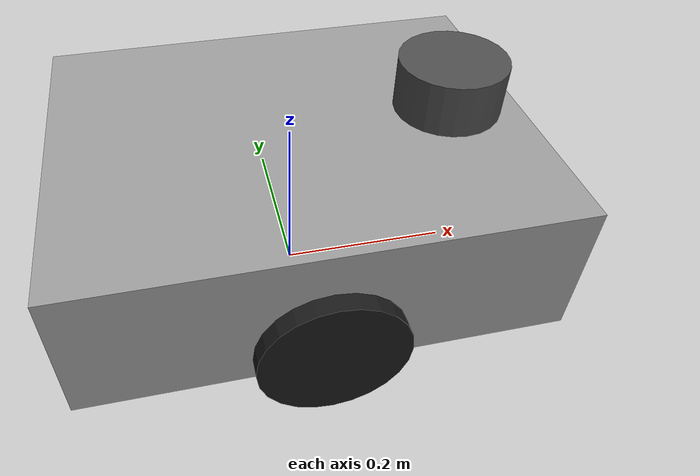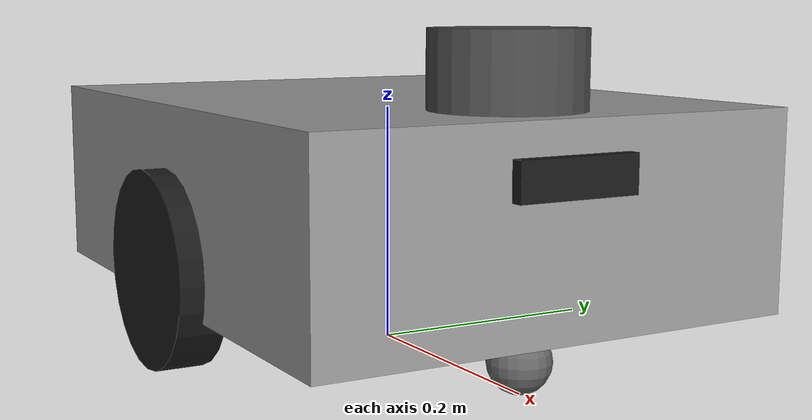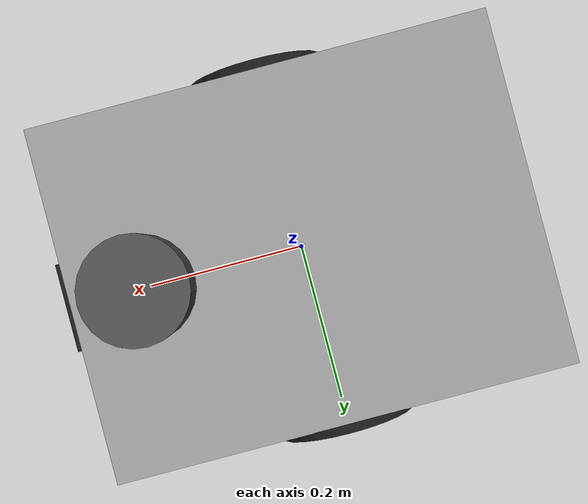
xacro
<?xml version="1.0"?>
<robot xmlns:xacro="http://www.ros.org/wiki/xacro" name="diff_robot">

  <!-- ============================================================
       包含所有宏定义文件
       ============================================================ -->
  <xacro:include filename="$(find diff_robot_description)/urdf/macros/inertial_macros.xacro" />
  <xacro:include filename="$(find diff_robot_description)/urdf/sensors/lidar.urdf.xacro" />
  <xacro:include filename="$(find diff_robot_description)/urdf/sensors/camera.urdf.xacro" />
  <xacro:include filename="$(find diff_robot_description)/urdf/sensors/imu.urdf.xacro" />

  <!-- ============================================================
       机器人参数定义（作为 xacro 属性，方便统一修改）
       ============================================================ -->
  <!-- 底盘参数 -->
  <xacro:property name="chassis_length"     value="0.52" />
  <xacro:property name="chassis_width"      value="0.40" />
  <xacro:property name="chassis_height"     value="0.16" />
  <xacro:property name="chassis_mass"       value="3.0" />
  <xacro:property name="chassis_ground_dist" value="0.05" />  <!-- 底盘离地高度 -->

  <!-- 轮子参数 -->
  <xacro:property name="wheel_radius"       value="0.08" />
  <xacro:property name="wheel_width"        value="0.039" />
  <xacro:property name="wheel_mass"         value="0.2" />
  <xacro:property name="wheel_separation"   value="${chassis_width}" />  <!-- 两轮中心距 -->
  <xacro:property name="wheel_offset_x"     value="0.0" />   <!-- 轮子前后偏移 -->
  <xacro:property name="wheel_offset_z"     value="${wheel_radius-chassis_ground_dist}" />   <!-- 轮子上下偏移 -->

  <!-- 万向轮参数 -->
  <xacro:property name="caster_radius"     value="${chassis_ground_dist/2}" />
  <xacro:property name="caster_mass"        value="0.10" />
  <xacro:property name="caster_offset_x"   value="0.20" />

  <!-- 传感器参数 -->
  <xacro:property name="lidar_height"      value="0.06" />  <!-- 激光雷达圆柱体高度 -->

  <!-- ============================================================
       base_footprint：地面投影坐标系（REP-105 约定）
       Z=0，代表机器人在地面上的投影点
       ============================================================ -->
  <link name="base_footprint" />

  <!-- base_footprint → base_link 变换 -->
  <joint name="base_footprint_joint" type="fixed">
    <parent link="base_footprint" />
    <child link="base_link" />
    <!-- 底盘中心在地面之上 chassis_ground_dist + chassis_height/2 -->
    <origin xyz="0 0 ${chassis_ground_dist}" rpy="0 0 0" />
  </joint>

  <!-- ============================================================
       base_link：机器人底盘中心坐标系
       ============================================================ -->
  <link name="base_link">
    <visual>
      <origin xyz="0 0 ${chassis_height/2}" rpy="0 0 0" />
      <geometry>
        <box size="${chassis_length} ${chassis_width} ${chassis_height}" />
      </geometry>
      <material name="chassis_color">
        <color rgba="0.6 0.6 0.6 1.0" />  <!-- 灰色 -->
      </material>
    </visual>

    <collision>
      <origin xyz="0 0 0" rpy="0 0 0" />
      <geometry>
        <box size="${chassis_length} ${chassis_width} ${chassis_height}" />
      </geometry>
    </collision>

    <!-- 底盘惯性参数 -->
    <xacro:box_inertial
      x="${chassis_length}" y="${chassis_width}" z="${chassis_height}"
      mass="${chassis_mass}" />
  </link>

  <!-- Gazebo 底盘材质 -->
  <gazebo reference="base_link">
    <material>Gazebo/Grey</material>
  </gazebo>

  <!-- ============================================================
       左轮
       continuous 关节：可以无限旋转
       轮子沿Y轴旋转（roll轴）
       ============================================================ -->
  <link name="left_wheel_link">
    <visual>
      <origin xyz="0 0 0" rpy="1.5708 0 0" />
      <geometry>
        <cylinder radius="${wheel_radius}" length="${wheel_width}" />
      </geometry>
      <material name="wheel_color">
        <color rgba="0.1 0.1 0.1 1.0" />
      </material>
    </visual>

    <collision>
      <origin xyz="0 0 0" rpy="1.5708 0 0" />
      <geometry>
        <cylinder radius="${wheel_radius}" length="${wheel_width}" />
      </geometry>
    </collision>

    <!-- 轮子惯性参数 -->
    <xacro:cylinder_inertial
      radius="${wheel_radius}" length="${wheel_width}"
      mass="${wheel_mass}" />
  </link>

  <joint name="left_wheel_joint" type="continuous">
    <parent link="base_link" />
    <child link="left_wheel_link" />
    <origin xyz="${wheel_offset_x} ${wheel_separation/2} ${wheel_offset_z}" rpy="0 0 0" />
    <!-- 旋转轴：绕Y轴旋转 -->
    <axis xyz="0 1 0" />
    <!-- 物理仿真参数 -->
    <dynamics damping="0.01" friction="0.1" />
    <!-- 关节限位（continuous 无限位，但可以设置力矩限制） -->
    <effort limit="10.0" />
    <velocity limit="10.0" />
  </joint>

  <!-- Gazebo 轮子材质 + 摩擦力 -->
  <gazebo reference="left_wheel_link">
    <material>Gazebo/DarkGrey</material>
    <mu1>1.0</mu1>   <!-- 静摩擦系数 -->
    <mu2>1.0</mu2>   <!-- 动摩擦系数 -->
    <kp>1000000.0</kp>  <!-- 接触刚度 -->
    <kd>100.0</kd>       <!-- 接触阻尼 -->
    <minDepth>0.001</minDepth>  <!-- 最小穿透深度 -->
  </gazebo>

  <!-- ============================================================
       右轮
       ============================================================ -->
  <link name="right_wheel_link">
    <visual>
      <origin xyz="0 0 0" rpy="1.5708 0 0" />
      <geometry>
        <cylinder radius="${wheel_radius}" length="${wheel_width}" />
      </geometry>
      <material name="wheel_color" />
    </visual>

    <collision>
      <origin xyz="0 0 0" rpy="1.5708 0 0" />
      <geometry>
        <cylinder radius="${wheel_radius}" length="${wheel_width}" />
      </geometry>
    </collision>

    <xacro:cylinder_inertial
      radius="${wheel_radius}" length="${wheel_width}"
      mass="${wheel_mass}" />
  </link>

  <joint name="right_wheel_joint" type="continuous">
    <parent link="base_link" />
    <child link="right_wheel_link" />
    <origin xyz="${wheel_offset_x} -${wheel_separation/2} ${wheel_offset_z}" rpy="0 0 0" />
    <axis xyz="0 1 0" />
    <dynamics damping="0.01" friction="0.1" />
    <effort limit="10.0" />
    <velocity limit="10.0" />
  </joint>

  <gazebo reference="right_wheel_link">
    <material>Gazebo/DarkGrey</material>
    <mu1>1.0</mu1>
    <mu2>1.0</mu2>
    <kp>1000000.0</kp>
    <kd>100.0</kd>
    <minDepth>0.001</minDepth>
  </gazebo>

  <!-- ============================================================
       前万向轮（caster wheel）
       使用球体模拟，固定在底盘后部
       摩擦系数很低，允许自由滑动
       ============================================================ -->
  <link name="front_caster_link">
    <visual>
      <origin xyz="0 0 0" rpy="0 0 0" />
      <geometry>
        <sphere radius="${caster_radius}" />
      </geometry>
      <material name="caster_color">
        <color rgba="0.4 0.4 0.4 1.0" />
      </material>
    </visual>

    <collision>
      <origin xyz="0 0 0" rpy="0 0 0" />
      <geometry>
        <sphere radius="${caster_radius}" />
      </geometry>
    </collision>

    <xacro:sphere_inertial radius="${caster_radius}" mass="${caster_mass}" />
  </link>

  <joint name="front_caster_joint" type="fixed">
    <parent link="base_link" />
    <child link="front_caster_link" />
    <!-- 万向轮在底盘前下方 -->
    <origin xyz="${caster_offset_x} 0 ${-caster_radius}" rpy="0 0 0" />
  </joint>

  <!-- 万向轮：极低摩擦力（允许自由滑动） -->
  <gazebo reference="front_caster_link">
    <material>Gazebo/Grey</material>
    <mu1>0.0</mu1>    <!-- 零摩擦！ -->
    <mu2>0.0</mu2>
    <kp>1000000.0</kp>
    <kd>100.0</kd>
  </gazebo>

  <!-- ============================================================
       后万向轮（caster wheel）
       使用球体模拟，固定在底盘后部
       摩擦系数很低，允许自由滑动
       ============================================================ -->
  <link name="back_caster_link">
    <visual>
      <origin xyz="0 0 0" rpy="0 0 0" />
      <geometry>
        <sphere radius="${caster_radius}" />
      </geometry>
      <material name="caster_color">
        <color rgba="0.4 0.4 0.4 1.0" />
      </material>
    </visual>

    <collision>
      <origin xyz="0 0 0" rpy="0 0 0" />
      <geometry>
        <sphere radius="${caster_radius}" />
      </geometry>
    </collision>

    <xacro:sphere_inertial radius="${caster_radius}" mass="${caster_mass}" />
  </link>

  <joint name="back_caster_joint" type="fixed">
    <parent link="base_link" />
    <child link="back_caster_link" />
    <!-- 万向轮在底盘后下方 -->
    <origin xyz="${-caster_offset_x} 0 ${-caster_radius}" rpy="0 0 0" />
  </joint>

  <!-- 万向轮：极低摩擦力（允许自由滑动） -->
  <gazebo reference="back_caster_link">
    <material>Gazebo/Grey</material>
    <mu1>0.0</mu1>    <!-- 零摩擦！ -->
    <mu2>0.0</mu2>
    <kp>1000000.0</kp>
    <kd>100.0</kd>
  </gazebo>

  <!-- ============================================================
       传感器实例化
       调用前面定义的传感器宏
       ============================================================ -->
  <!-- 激光雷达：z = 底盘离地高度 + 底盘高度 + 激光雷达高度/2 -->
  <xacro:lidar_sensor
    parent="base_link"
    prefix="laser"
    xyz="0.18 0 ${chassis_height + lidar_height/2}"
    rpy="0 0 0"
    update_rate="5"
    samples="360"
    range_min="0.15"
    range_max="12.0" />

  <!-- 深度相机：底盘前方偏上 -->
  <xacro:camera_sensor
    parent="base_link"
    prefix="camera"
    xyz="0.26 0 0.12"
    rpy="0 0 0"
    update_rate="30"
    width="640"
    height="480"
    fov="1.047"
    depth_range_max="10.0" />

  <!-- IMU：底盘中心偏上 -->
  <xacro:imu_sensor
    parent="base_link"
    prefix="imu"
    xyz="0 0 0.08"
    rpy="0 0 0"
    update_rate="100" />

  <ros2_control name="DiffBotSystem" type="system">
    <hardware>
      <!-- 使用 Gazebo Harmonic 硬件接口插件 -->
      <plugin>gz_ros2_control/GazeboSimSystem</plugin>
    </hardware>

    <!-- 左轮关节 -->
    <joint name="left_wheel_joint">
      <!-- 命令接口：控制器发送速度命令 -->
      <command_interface name="velocity" />
      <!-- 状态接口：读取关节状态 -->
      <state_interface name="position" />
      <state_interface name="velocity" />
    </joint>

    <!-- 右轮关节 -->
    <joint name="right_wheel_joint">
      <command_interface name="velocity" />
      <state_interface name="position" />
      <state_interface name="velocity" />
    </joint>
  </ros2_control>

  <gazebo>
    <plugin name="gz_sim_ros2_control" filename="libgz_sim_ros2_control.so">
      <robot_param>robot_description</robot_param>
      <ros>
        <namespace>diff_robot</namespace>
      </ros>
      <control_manager>
        <param name="update_rate">100</param>
        <param name="use_sim_time">true</param>
      </control_manager>
    </plugin>
  </gazebo>

</robot>

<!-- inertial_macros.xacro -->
<robot xmlns:xacro="http://www.ros.org/wiki/xacro" name="inertial_macros">

  <xacro:macro name="box_inertial" params="x y z mass">
    <inertial>
      <mass value="${mass}" />
      <origin xyz="0 0 0" rpy="0 0 0" />
      <!-- 长方体惯性公式 -->
      <inertia ixx="${mass / 12.0 * (y*y + z*z)}"
               ixy="0" ixz="0"
               iyy="${mass / 12.0 * (x*x + z*z)}"
               iyz="0"
               izz="${mass / 12.0 * (x*x + y*y)}" />
    </inertial>
  </xacro:macro>

  <xacro:macro name="cylinder_inertial" params="radius length mass">
    <inertial>
      <mass value="${mass}" />
      <origin xyz="0 0 0" rpy="0 0 0" />
      <!-- 圆柱体惯性公式 -->
      <inertia ixx="${mass / 12.0 * (3*radius*radius + length*length)}"
               ixy="0" ixz="0"
               iyy="${mass / 12.0 * (3*radius*radius + length*length)}"
               iyz="0"
               izz="${mass / 2.0 * radius*radius}" />
    </inertial>
  </xacro:macro>

  <xacro:macro name="sphere_inertial" params="radius mass">
    <inertial>
      <mass value="${mass}" />
      <origin xyz="0 0 0" rpy="0 0 0" />
      <!-- 球体惯性公式 -->
      <inertia ixx="${2.0/5.0 * mass * radius*radius}"
               ixy="0" ixz="0"
               iyy="${2.0/5.0 * mass * radius*radius}"
               iyz="0"
               izz="${2.0/5.0 * mass * radius*radius}" />
    </inertial>
  </xacro:macro>

</robot>

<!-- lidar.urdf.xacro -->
<robot xmlns:xacro="http://www.ros.org/wiki/xacro" name="lidar_sensor">

  <xacro:include filename="$(find diff_robot_description)/urdf/macros/inertial_macros.xacro" />

  <xacro:macro name="lidar_sensor" params="
    parent:=base_link
    prefix:=laser
    xyz:='0.24 0 0.28'
    rpy:='0 0 0'
    update_rate:=5
    samples:=360
    range_min:=0.15
    range_max:=12.0">

    <!-- 雷达 link（圆柱体，模拟雷达外壳） -->
    <link name="${prefix}_link">
      <visual>
        <origin xyz="0 0 0" rpy="0 0 0" />
        <geometry>
          <!-- 圆柱体：半径6cm，高度6cm -->
          <cylinder radius="0.06" length="0.06" />
        </geometry>
        <material name="dark_grey">
          <color rgba="0.3 0.3 0.3 1.0" />
        </material>
      </visual>

      <collision>
        <origin xyz="0 0 0" rpy="0 0 0" />
        <geometry>
          <cylinder radius="0.06" length="0.06" />
        </geometry>
      </collision>

      <!-- 惯性参数：小型雷达约0.1kg -->
      <xacro:cylinder_inertial radius="0.06" length="0.06" mass="0.1" />
    </link>

    <!-- 雷达 joint（固定在父坐标系上） -->
    <joint name="${prefix}_joint" type="fixed">
      <parent link="${parent}" />
      <child link="${prefix}_link" />
      <origin xyz="${xyz}" rpy="${rpy}" />
    </joint>

    <!-- Gazebo 雷达传感器插件 -->
    <gazebo reference="${prefix}_link">
      <!-- 传感器视觉材质 -->
      <material>Gazebo/DarkGrey</material>

      <!-- 传感器定义 -->
      <sensor name="${prefix}_sensor" type="ray">
        <always_on>true</always_on>
        <update_rate>${update_rate}</update_rate>
        <visualize>true</visualize>  <!-- 在Gazebo中可视化射线 -->

        <ray>
          <scan>
            <!-- 水平扫描模式 -->
            <horizontal>
              <samples>${samples}</samples>
              <!-- 分辨率：角度/采样点数，这里是1° -->
              <resolution>1</resolution>
              <!-- 最小角度（弧度）-180° -->
              <min_angle>-3.14159</min_angle>
              <!-- 最大角度（弧度）+180° -->
              <max_angle>3.14159</max_angle>
            </horizontal>
          </scan>
          <range>
            <min>${range_min}</min>
            <max>${range_max}</max>
            <resolution>0.01</resolution>  <!-- 距离分辨率1cm -->
          </range>
          <!-- 测量噪声模型 -->
          <noise>
            <type>gaussian</type>
            <!-- 高斯噪声：均值0，标准差0.01m -->
            <mean>0.0</mean>
            <stddev>0.01</stddev>
          </noise>
        </ray>

        <!-- Gazebo ROS 激光扫描插件 -->
        <plugin name="${prefix}_plugin" filename="libgazebo_ros_ray_sensor.so">
          <ros>
            <!-- 命名空间（留空使用全局命名空间） -->
            <namespace></namespace>
            <!-- 重映射参数名 -->
            <remapping>~/out:=scan</remapping>
          </ros>
          <output_type>sensor_msgs/LaserScan</output_type>
          <frame_name>${prefix}_link</frame_name>
        </plugin>
      </sensor>
    </gazebo>

  </xacro:macro>

</robot>

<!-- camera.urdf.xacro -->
<robot xmlns:xacro="http://www.ros.org/wiki/xacro" name="camera_sensor">

  <xacro:include filename="$(find diff_robot_description)/urdf/macros/inertial_macros.xacro" />

  <xacro:macro name="camera_sensor" params="
    parent:=base_link
    prefix:=camera
    xyz:='0.36 0 0.16'
    rpy:='0 0 0'
    update_rate:=30
    width:=640
    height:=480
    fov:=1.047
    depth_range_max:=10.0">

    <!-- 相机 link（长方体，模拟相机外壳） -->
    <link name="${prefix}_link">
      <visual>
        <origin xyz="0 0 0" rpy="0 0 0" />
        <geometry>
          <!-- 相机外壳：2cm x 10cm x 3cm -->
          <box size="0.02 0.10 0.03" />
        </geometry>
        <material name="black">
          <color rgba="0.1 0.1 0.1 1.0" />
        </material>
      </visual>

      <collision>
        <origin xyz="0 0 0" rpy="0 0 0" />
        <geometry>
          <box size="0.02 0.10 0.03" />
        </geometry>
      </collision>

      <!-- 惯性参数：小型相机约0.05kg -->
      <xacro:box_inertial x="0.02" y="0.10" z="0.03" mass="0.05" />
    </link>

    <!-- 相机关节 -->
    <joint name="${prefix}_joint" type="fixed">
      <parent link="${parent}" />
      <child link="${prefix}_link" />
      <origin xyz="${xyz}" rpy="${rpy}" />
    </joint>

    <link name="${prefix}_color_optical_frame" />
    <joint name="${prefix}_color_optical_joint" type="fixed">
      <parent link="${prefix}_link" />
      <child link="${prefix}_color_optical_frame" />
      <!-- 从相机坐标系到光学坐标系的旋转 -->
      <origin xyz="0 0 0" rpy="-1.5708 0 -1.5708" />
    </joint>

    <link name="${prefix}_depth_optical_frame" />
    <joint name="${prefix}_depth_optical_joint" type="fixed">
      <parent link="${prefix}_link" />
      <child link="${prefix}_depth_optical_frame" />
      <origin xyz="0 0 0" rpy="-1.5708 0 -1.5708" />
    </joint>

    <!-- Gazebo 相机传感器插件 -->
    <gazebo reference="${prefix}_link">
      <material>Gazebo/Black</material>

      <!-- RGB 相机传感器 -->
      <sensor name="${prefix}_color_sensor" type="camera">
        <always_on>true</always_on>
        <update_rate>${update_rate}</update_rate>
        <visualize>true</visualize>

        <camera name="${prefix}_color">
          <horizontal_fov>${fov}</horizontal_fov>
          <image>
            <width>${width}</width>
            <height>${height}</height>
            <format>R8G8B8</format>
          </image>
          <clip>
            <near>0.05</near>
            <far>${depth_range_max}</far>
          </clip>
          <noise>
            <type>gaussian</type>
            <mean>0.0</mean>
            <stddev>0.007</stddev>
          </noise>
        </camera>

        <plugin name="${prefix}_color_controller" filename="libgazebo_ros_camera.so">
          <ros>
            <namespace></namespace>
            <remapping>image_raw:=color/image_raw</remapping>
            <remapping>camera_info:=color/camera_info</remapping>
          </ros>
          <frame_name>${prefix}_color_optical_frame</frame_name>
          <hack_baseline>0.07</hack_baseline>
        </plugin>
      </sensor>

      <!-- 深度传感器 -->
      <sensor name="${prefix}_depth_sensor" type="depth">
        <always_on>true</always_on>
        <update_rate>${update_rate}</update_rate>
        <visualize>false</visualize>

        <camera name="${prefix}_depth">
          <horizontal_fov>${fov}</horizontal_fov>
          <image>
            <width>${width}</width>
            <height>${height}</height>
            <format>R8G8B8</format>
          </image>
          <clip>
            <near>0.05</near>
            <far>${depth_range_max}</far>
          </clip>
          <noise>
            <type>gaussian</type>
            <mean>0.0</mean>
            <stddev>0.01</stddev>
          </noise>
        </camera>

        <plugin name="${prefix}_depth_controller" filename="libgazebo_ros_depth_camera.so">
          <ros>
            <namespace></namespace>
            <remapping>depth/image_raw:=depth/image_raw</remapping>
            <remapping>depth/camera_info:=depth/camera_info</remapping>
            <remapping>points:=depth/points</remapping>
          </ros>
          <frame_name>${prefix}_depth_optical_frame</frame_name>
          <hack_baseline>0.07</hack_baseline>
          <min_depth>0.1</min_depth>
        </plugin>
      </sensor>
    </gazebo>

  </xacro:macro>

</robot>

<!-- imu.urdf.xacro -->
<robot xmlns:xacro="http://www.ros.org/wiki/xacro" name="imu_sensor">

  <xacro:include filename="$(find diff_robot_description)/urdf/macros/inertial_macros.xacro" />

  <xacro:macro name="imu_sensor" params="
    parent:=base_link
    prefix:=imu
    xyz:='0 0 0.10'
    rpy:='0 0 0'
    update_rate:=100">

    <!-- IMU link（小方块，模拟 IMU 芯片） -->
    <link name="${prefix}_link">
      <visual>
        <origin xyz="0 0 0" rpy="0 0 0" />
        <geometry>
          <!-- IMU 芯片：1.5cm x 1.5cm x 0.3cm -->
          <box size="0.015 0.015 0.003" />
        </geometry>
        <material name="blue">
          <color rgba="0.0 0.0 0.8 1.0" />
        </material>
      </visual>

      <collision>
        <origin xyz="0 0 0" rpy="0 0 0" />
        <geometry>
          <box size="0.015 0.015 0.003" />
        </geometry>
      </collision>

      <!-- 惯性参数：IMU芯片约0.005kg -->
      <xacro:box_inertial x="0.015" y="0.015" z="0.003" mass="0.005" />
    </link>

    <!-- IMU joint -->
    <joint name="${prefix}_joint" type="fixed">
      <parent link="${parent}" />
      <child link="${prefix}_link" />
      <origin xyz="${xyz}" rpy="${rpy}" />
    </joint>

    <!-- Gazebo IMU 传感器插件 -->
    <gazebo reference="${prefix}_link">
      <material>Gazebo/Grey</material>
      <gravity>true</gravity>

      <sensor name="${prefix}_sensor" type="imu">
        <always_on>true</always_on>
        <update_rate>${update_rate}</update_rate>
        <visualize>false</visualize>

        <imu>
          <!-- 角速度噪声模型 -->
          <angular_velocity>
            <x>
              <noise type="gaussian">
                <mean>0.0</mean>
                <stddev>0.001</stddev>     <!-- 0.001 rad/s 标准差 -->
                <bias_mean>0.0</bias_mean>
                <bias_stddev>0.0001</bias_stddev>
              </noise>
            </x>
            <y>
              <noise type="gaussian">
                <mean>0.0</mean>
                <stddev>0.001</stddev>
                <bias_mean>0.0</bias_mean>
                <bias_stddev>0.0001</bias_stddev>
              </noise>
            </y>
            <z>
              <noise type="gaussian">
                <mean>0.0</mean>
                <stddev>0.001</stddev>
                <bias_mean>0.0</bias_mean>
                <bias_stddev>0.0001</bias_stddev>
              </noise>
            </z>
          </angular_velocity>

          <!-- 线性加速度噪声模型 -->
          <linear_acceleration>
            <x>
              <noise type="gaussian">
                <mean>0.0</mean>
                <stddev>0.01</stddev>      <!-- 0.01 m/s² 标准差 -->
                <bias_mean>0.0</bias_mean>
                <bias_stddev>0.001</bias_stddev>
              </noise>
            </x>
            <y>
              <noise type="gaussian">
                <mean>0.0</mean>
                <stddev>0.01</stddev>
                <bias_mean>0.0</bias_mean>
                <bias_stddev>0.001</bias_stddev>
              </noise>
            </y>
            <z>
              <noise type="gaussian">
                <mean>0.0</mean>
                <stddev>0.01</stddev>
                <bias_mean>0.0</bias_mean>
                <bias_stddev>0.001</bias_stddev>
              </noise>
            </z>
          </linear_acceleration>
        </imu>

        <!-- Gazebo ROS IMU 插件 -->
        <plugin name="${prefix}_plugin" filename="libgazebo_ros_imu_sensor.so">
          <ros>
            <namespace></namespace>
            <remapping>~/out:=imu/data</remapping>
          </ros>
          <initial_orientation_as_reference>false</initial_orientation_as_reference>
          <frame_name>${prefix}_link</frame_name>
        </plugin>
      </sensor>
    </gazebo>

  </xacro:macro>

</robot>
